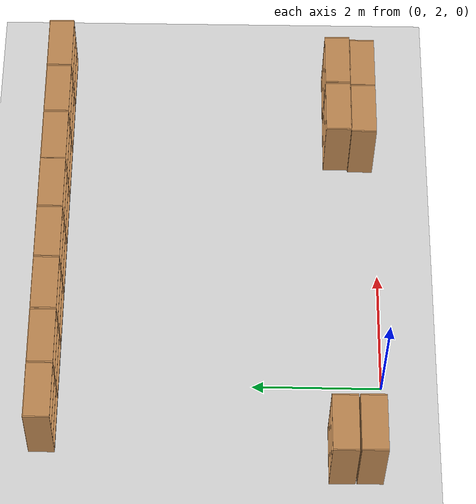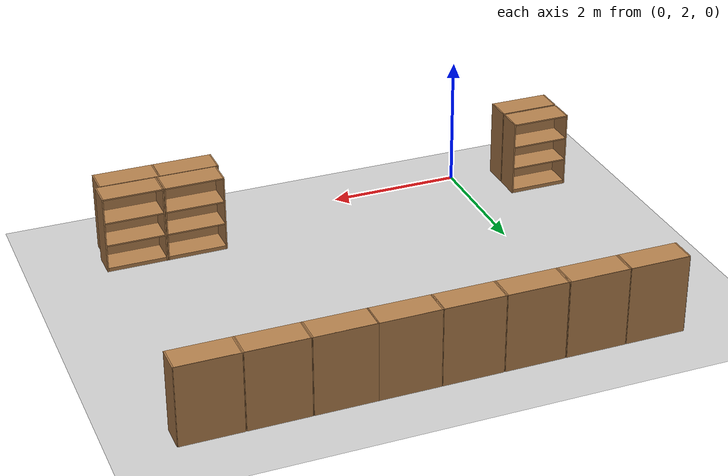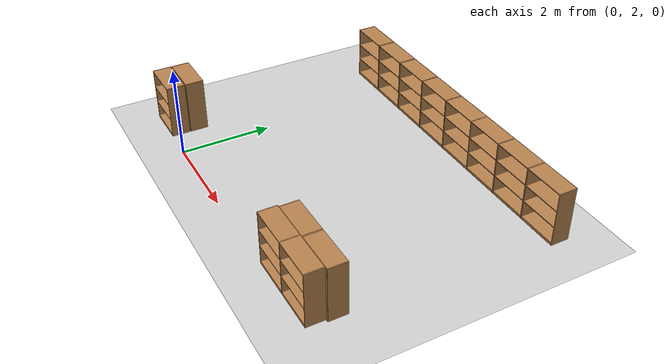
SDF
<sdf version="1.7">
 <world name="default">
  <model name="ground_plane">
   <static>1</static>
   <link name="link">
    <collision name="collision">
     <geometry><plane><normal>0 0 1</normal><size>100 100</size></plane></geometry>
     <surface><friction><ode><mu>100</mu><mu2>50</mu2></ode></friction></surface>
    </collision>
    <visual name="visual">
     <cast_shadows>0</cast_shadows>
     <geometry><plane><normal>0 0 1</normal><size>100 100</size></plane></geometry>
     <material>
      <script><uri>file://media/materials/scripts/gazebo.material</uri><name>Gazebo/Grey</name></script>
     </material>
    </visual>
   </link>
  </model>
  <model name="bookshelf_clone_0_clone_0_clone_clone_clone_clone_clone_1_clone_clone_clone_clone_clone_clone_clone_clone_clone_clone_0_clone_clone_clone_clone_clone_0">
   <static>1</static>
   <link name="link">
    <inertial><mass>1</mass></inertial>
    <collision name="back">
     <pose>0 0.005 0.6 0 -0 0</pose>
     <geometry><box><size>0.9 0.01 1.2</size></box></geometry>
    </collision>
    <visual name="visual1">
     <pose>0 0.005 0.6 0 -0 0</pose>
     <geometry><box><size>0.9 0.01 1.2</size></box></geometry>
     <material>
      <script><uri>file://media/materials/scripts/gazebo.material</uri><name>Gazebo/Wood</name></script>
     </material>
    </visual>
    <collision name="left_side">
     <pose>0.45 -0.195 0.6 0 -0 0</pose>
     <geometry><box><size>0.02 0.4 1.2</size></box></geometry>
    </collision>
    <visual name="visual2">
     <pose>0.45 -0.195 0.6 0 -0 0</pose>
     <geometry><box><size>0.02 0.4 1.2</size></box></geometry>
     <material>
      <script><uri>file://media/materials/scripts/gazebo.material</uri><name>Gazebo/Wood</name></script>
     </material>
    </visual>
    <collision name="right_side">
     <pose>-0.45 -0.195 0.6 0 -0 0</pose>
     <geometry><box><size>0.02 0.4 1.2</size></box></geometry>
    </collision>
    <visual name="visual3">
     <pose>-0.45 -0.195 0.6 0 -0 0</pose>
     <geometry><box><size>0.02 0.4 1.2</size></box></geometry>
     <material>
      <script><uri>file://media/materials/scripts/gazebo.material</uri><name>Gazebo/Wood</name></script>
     </material>
    </visual>
    <collision name="bottom">
     <pose>0 -0.195 0.03 0 -0 0</pose>
     <geometry><box><size>0.88 0.4 0.06</size></box></geometry>
    </collision>
    <visual name="visual4">
     <pose>0 -0.195 0.03 0 -0 0</pose>
     <geometry><box><size>0.88 0.4 0.06</size></box></geometry>
     <material>
      <script><uri>file://media/materials/scripts/gazebo.material</uri><name>Gazebo/Wood</name></script>
     </material>
    </visual>
    <collision name="top">
     <pose>0 -0.195 1.19 0 -0 0</pose>
     <geometry><box><size>0.88 0.4 0.02</size></box></geometry>
    </collision>
    <visual name="visual5">
     <pose>0 -0.195 1.19 0 -0 0</pose>
     <geometry><box><size>0.88 0.4 0.02</size></box></geometry>
     <material>
      <script><uri>file://media/materials/scripts/gazebo.material</uri><name>Gazebo/Wood</name></script>
     </material>
    </visual>
    <collision name="low_shelf">
     <pose>0 -0.195 0.43 0 -0 0</pose>
     <geometry><box><size>0.88 0.4 0.02</size></box></geometry>
    </collision>
    <visual name="visual6">
     <pose>0 -0.195 0.43 0 -0 0</pose>
     <geometry><box><size>0.88 0.4 0.02</size></box></geometry>
     <material>
      <script><uri>file://media/materials/scripts/gazebo.material</uri><name>Gazebo/Wood</name></script>
     </material>
    </visual>
    <collision name="high_shelf">
     <pose>0 -0.195 0.8 0 -0 0</pose>
     <geometry><box><size>0.88 0.4 0.02</size></box></geometry>
    </collision>
    <visual name="visual7">
     <pose>0 -0.195 0.8 0 -0 0</pose>
     <geometry><box><size>0.88 0.4 0.02</size></box></geometry>
     <material>
      <script><uri>file://media/materials/scripts/gazebo.material</uri><name>Gazebo/Wood</name></script>
     </material>
    </visual>
   </link>
   <pose>-1.14635 2.40318 0.004614 0 -0 0.000147</pose>
  </model>
  <model name="bookshelf_clone_0_clone_0_clone_clone_clone_clone_clone_1_clone_clone_clone_clone_clone_clone_clone_clone_clone_clone_0_clone_clone_clone_clone_clone_0_clone_1">
   <static>1</static>
   <link name="link">
    <inertial><mass>1</mass></inertial>
    <collision name="back">
     <pose>0 0.005 0.6 0 -0 0</pose>
     <geometry><box><size>0.9 0.01 1.2</size></box></geometry>
    </collision>
    <visual name="visual1">
     <pose>0 0.005 0.6 0 -0 0</pose>
     <geometry><box><size>0.9 0.01 1.2</size></box></geometry>
     <material>
      <script><uri>file://media/materials/scripts/gazebo.material</uri><name>Gazebo/Wood</name></script>
     </material>
    </visual>
    <collision name="left_side">
     <pose>0.45 -0.195 0.6 0 -0 0</pose>
     <geometry><box><size>0.02 0.4 1.2</size></box></geometry>
    </collision>
    <visual name="visual2">
     <pose>0.45 -0.195 0.6 0 -0 0</pose>
     <geometry><box><size>0.02 0.4 1.2</size></box></geometry>
     <material>
      <script><uri>file://media/materials/scripts/gazebo.material</uri><name>Gazebo/Wood</name></script>
     </material>
    </visual>
    <collision name="right_side">
     <pose>-0.45 -0.195 0.6 0 -0 0</pose>
     <geometry><box><size>0.02 0.4 1.2</size></box></geometry>
    </collision>
    <visual name="visual3">
     <pose>-0.45 -0.195 0.6 0 -0 0</pose>
     <geometry><box><size>0.02 0.4 1.2</size></box></geometry>
     <material>
      <script><uri>file://media/materials/scripts/gazebo.material</uri><name>Gazebo/Wood</name></script>
     </material>
    </visual>
    <collision name="bottom">
     <pose>0 -0.195 0.03 0 -0 0</pose>
     <geometry><box><size>0.88 0.4 0.06</size></box></geometry>
    </collision>
    <visual name="visual4">
     <pose>0 -0.195 0.03 0 -0 0</pose>
     <geometry><box><size>0.88 0.4 0.06</size></box></geometry>
     <material>
      <script><uri>file://media/materials/scripts/gazebo.material</uri><name>Gazebo/Wood</name></script>
     </material>
    </visual>
    <collision name="top">
     <pose>0 -0.195 1.19 0 -0 0</pose>
     <geometry><box><size>0.88 0.4 0.02</size></box></geometry>
    </collision>
    <visual name="visual5">
     <pose>0 -0.195 1.19 0 -0 0</pose>
     <geometry><box><size>0.88 0.4 0.02</size></box></geometry>
     <material>
      <script><uri>file://media/materials/scripts/gazebo.material</uri><name>Gazebo/Wood</name></script>
     </material>
    </visual>
    <collision name="low_shelf">
     <pose>0 -0.195 0.43 0 -0 0</pose>
     <geometry><box><size>0.88 0.4 0.02</size></box></geometry>
    </collision>
    <visual name="visual6">
     <pose>0 -0.195 0.43 0 -0 0</pose>
     <geometry><box><size>0.88 0.4 0.02</size></box></geometry>
     <material>
      <script><uri>file://media/materials/scripts/gazebo.material</uri><name>Gazebo/Wood</name></script>
     </material>
    </visual>
    <collision name="high_shelf">
     <pose>0 -0.195 0.8 0 -0 0</pose>
     <geometry><box><size>0.88 0.4 0.02</size></box></geometry>
    </collision>
    <visual name="visual7">
     <pose>0 -0.195 0.8 0 -0 0</pose>
     <geometry><box><size>0.88 0.4 0.02</size></box></geometry>
     <material>
      <script><uri>file://media/materials/scripts/gazebo.material</uri><name>Gazebo/Wood</name></script>
     </material>
    </visual>
   </link>
   <pose>4.46587 2.42546 0.004614 0 -0 0.000147</pose>
  </model>
  <model name="bookshelf_clone_0_clone_0_clone_clone_clone_clone_clone_1_clone_clone_clone_clone_clone_clone_clone_clone_clone_clone_0_clone_clone_clone_clone_clone_0_clone_1_clone">
   <static>1</static>
   <link name="link">
    <inertial><mass>1</mass></inertial>
    <collision name="back">
     <pose>0 0.005 0.6 0 -0 0</pose>
     <geometry><box><size>0.9 0.01 1.2</size></box></geometry>
    </collision>
    <visual name="visual1">
     <pose>0 0.005 0.6 0 -0 0</pose>
     <geometry><box><size>0.9 0.01 1.2</size></box></geometry>
     <material>
      <script><uri>file://media/materials/scripts/gazebo.material</uri><name>Gazebo/Wood</name></script>
     </material>
    </visual>
    <collision name="left_side">
     <pose>0.45 -0.195 0.6 0 -0 0</pose>
     <geometry><box><size>0.02 0.4 1.2</size></box></geometry>
    </collision>
    <visual name="visual2">
     <pose>0.45 -0.195 0.6 0 -0 0</pose>
     <geometry><box><size>0.02 0.4 1.2</size></box></geometry>
     <material>
      <script><uri>file://media/materials/scripts/gazebo.material</uri><name>Gazebo/Wood</name></script>
     </material>
    </visual>
    <collision name="right_side">
     <pose>-0.45 -0.195 0.6 0 -0 0</pose>
     <geometry><box><size>0.02 0.4 1.2</size></box></geometry>
    </collision>
    <visual name="visual3">
     <pose>-0.45 -0.195 0.6 0 -0 0</pose>
     <geometry><box><size>0.02 0.4 1.2</size></box></geometry>
     <material>
      <script><uri>file://media/materials/scripts/gazebo.material</uri><name>Gazebo/Wood</name></script>
     </material>
    </visual>
    <collision name="bottom">
     <pose>0 -0.195 0.03 0 -0 0</pose>
     <geometry><box><size>0.88 0.4 0.06</size></box></geometry>
    </collision>
    <visual name="visual4">
     <pose>0 -0.195 0.03 0 -0 0</pose>
     <geometry><box><size>0.88 0.4 0.06</size></box></geometry>
     <material>
      <script><uri>file://media/materials/scripts/gazebo.material</uri><name>Gazebo/Wood</name></script>
     </material>
    </visual>
    <collision name="top">
     <pose>0 -0.195 1.19 0 -0 0</pose>
     <geometry><box><size>0.88 0.4 0.02</size></box></geometry>
    </collision>
    <visual name="visual5">
     <pose>0 -0.195 1.19 0 -0 0</pose>
     <geometry><box><size>0.88 0.4 0.02</size></box></geometry>
     <material>
      <script><uri>file://media/materials/scripts/gazebo.material</uri><name>Gazebo/Wood</name></script>
     </material>
    </visual>
    <collision name="low_shelf">
     <pose>0 -0.195 0.43 0 -0 0</pose>
     <geometry><box><size>0.88 0.4 0.02</size></box></geometry>
    </collision>
    <visual name="visual6">
     <pose>0 -0.195 0.43 0 -0 0</pose>
     <geometry><box><size>0.88 0.4 0.02</size></box></geometry>
     <material>
      <script><uri>file://media/materials/scripts/gazebo.material</uri><name>Gazebo/Wood</name></script>
     </material>
    </visual>
    <collision name="high_shelf">
     <pose>0 -0.195 0.8 0 -0 0</pose>
     <geometry><box><size>0.88 0.4 0.02</size></box></geometry>
    </collision>
    <visual name="visual7">
     <pose>0 -0.195 0.8 0 -0 0</pose>
     <geometry><box><size>0.88 0.4 0.02</size></box></geometry>
     <material>
      <script><uri>file://media/materials/scripts/gazebo.material</uri><name>Gazebo/Wood</name></script>
     </material>
    </visual>
   </link>
   <pose>5.37211 2.42546 0.004614 0 -0 0.000147</pose>
  </model>
  <model name="bookshelf_clone_0_clone_0_clone_clone_clone_0_clone_clone_1_clone_0_clone">
   <static>1</static>
   <link name="link">
    <inertial><mass>1</mass></inertial>
    <collision name="back">
     <pose>0 0.005 0.6 0 -0 0</pose>
     <geometry><box><size>0.9 0.01 1.2</size></box></geometry>
    </collision>
    <visual name="visual1">
     <pose>0 0.005 0.6 0 -0 0</pose>
     <geometry><box><size>0.9 0.01 1.2</size></box></geometry>
     <material>
      <script><uri>file://media/materials/scripts/gazebo.material</uri><name>Gazebo/Wood</name></script>
     </material>
    </visual>
    <collision name="left_side">
     <pose>0.45 -0.195 0.6 0 -0 0</pose>
     <geometry><box><size>0.02 0.4 1.2</size></box></geometry>
    </collision>
    <visual name="visual2">
     <pose>0.45 -0.195 0.6 0 -0 0</pose>
     <geometry><box><size>0.02 0.4 1.2</size></box></geometry>
     <material>
      <script><uri>file://media/materials/scripts/gazebo.material</uri><name>Gazebo/Wood</name></script>
     </material>
    </visual>
    <collision name="right_side">
     <pose>-0.45 -0.195 0.6 0 -0 0</pose>
     <geometry><box><size>0.02 0.4 1.2</size></box></geometry>
    </collision>
    <visual name="visual3">
     <pose>-0.45 -0.195 0.6 0 -0 0</pose>
     <geometry><box><size>0.02 0.4 1.2</size></box></geometry>
     <material>
      <script><uri>file://media/materials/scripts/gazebo.material</uri><name>Gazebo/Wood</name></script>
     </material>
    </visual>
    <collision name="bottom">
     <pose>0 -0.195 0.03 0 -0 0</pose>
     <geometry><box><size>0.88 0.4 0.06</size></box></geometry>
    </collision>
    <visual name="visual4">
     <pose>0 -0.195 0.03 0 -0 0</pose>
     <geometry><box><size>0.88 0.4 0.06</size></box></geometry>
     <material>
      <script><uri>file://media/materials/scripts/gazebo.material</uri><name>Gazebo/Wood</name></script>
     </material>
    </visual>
    <collision name="top">
     <pose>0 -0.195 1.19 0 -0 0</pose>
     <geometry><box><size>0.88 0.4 0.02</size></box></geometry>
    </collision>
    <visual name="visual5">
     <pose>0 -0.195 1.19 0 -0 0</pose>
     <geometry><box><size>0.88 0.4 0.02</size></box></geometry>
     <material>
      <script><uri>file://media/materials/scripts/gazebo.material</uri><name>Gazebo/Wood</name></script>
     </material>
    </visual>
    <collision name="low_shelf">
     <pose>0 -0.195 0.43 0 -0 0</pose>
     <geometry><box><size>0.88 0.4 0.02</size></box></geometry>
    </collision>
    <visual name="visual6">
     <pose>0 -0.195 0.43 0 -0 0</pose>
     <geometry><box><size>0.88 0.4 0.02</size></box></geometry>
     <material>
      <script><uri>file://media/materials/scripts/gazebo.material</uri><name>Gazebo/Wood</name></script>
     </material>
    </visual>
    <collision name="high_shelf">
     <pose>0 -0.195 0.8 0 -0 0</pose>
     <geometry><box><size>0.88 0.4 0.02</size></box></geometry>
    </collision>
    <visual name="visual7">
     <pose>0 -0.195 0.8 0 -0 0</pose>
     <geometry><box><size>0.88 0.4 0.02</size></box></geometry>
     <material>
      <script><uri>file://media/materials/scripts/gazebo.material</uri><name>Gazebo/Wood</name></script>
     </material>
    </visual>
   </link>
   <pose>5.42881 2.44108 0 0 0 -3.14107</pose>
  </model>
  <model name="bookshelf_clone_0_clone_0_clone_clone_clone_0_clone_clone_1_clone_0_clone_0">
   <static>1</static>
   <link name="link">
    <inertial><mass>1</mass></inertial>
    <collision name="back">
     <pose>0 0.005 0.6 0 -0 0</pose>
     <geometry><box><size>0.9 0.01 1.2</size></box></geometry>
    </collision>
    <visual name="visual1">
     <pose>0 0.005 0.6 0 -0 0</pose>
     <geometry><box><size>0.9 0.01 1.2</size></box></geometry>
     <material>
      <script><uri>file://media/materials/scripts/gazebo.material</uri><name>Gazebo/Wood</name></script>
     </material>
    </visual>
    <collision name="left_side">
     <pose>0.45 -0.195 0.6 0 -0 0</pose>
     <geometry><box><size>0.02 0.4 1.2</size></box></geometry>
    </collision>
    <visual name="visual2">
     <pose>0.45 -0.195 0.6 0 -0 0</pose>
     <geometry><box><size>0.02 0.4 1.2</size></box></geometry>
     <material>
      <script><uri>file://media/materials/scripts/gazebo.material</uri><name>Gazebo/Wood</name></script>
     </material>
    </visual>
    <collision name="right_side">
     <pose>-0.45 -0.195 0.6 0 -0 0</pose>
     <geometry><box><size>0.02 0.4 1.2</size></box></geometry>
    </collision>
    <visual name="visual3">
     <pose>-0.45 -0.195 0.6 0 -0 0</pose>
     <geometry><box><size>0.02 0.4 1.2</size></box></geometry>
     <material>
      <script><uri>file://media/materials/scripts/gazebo.material</uri><name>Gazebo/Wood</name></script>
     </material>
    </visual>
    <collision name="bottom">
     <pose>0 -0.195 0.03 0 -0 0</pose>
     <geometry><box><size>0.88 0.4 0.06</size></box></geometry>
    </collision>
    <visual name="visual4">
     <pose>0 -0.195 0.03 0 -0 0</pose>
     <geometry><box><size>0.88 0.4 0.06</size></box></geometry>
     <material>
      <script><uri>file://media/materials/scripts/gazebo.material</uri><name>Gazebo/Wood</name></script>
     </material>
    </visual>
    <collision name="top">
     <pose>0 -0.195 1.19 0 -0 0</pose>
     <geometry><box><size>0.88 0.4 0.02</size></box></geometry>
    </collision>
    <visual name="visual5">
     <pose>0 -0.195 1.19 0 -0 0</pose>
     <geometry><box><size>0.88 0.4 0.02</size></box></geometry>
     <material>
      <script><uri>file://media/materials/scripts/gazebo.material</uri><name>Gazebo/Wood</name></script>
     </material>
    </visual>
    <collision name="low_shelf">
     <pose>0 -0.195 0.43 0 -0 0</pose>
     <geometry><box><size>0.88 0.4 0.02</size></box></geometry>
    </collision>
    <visual name="visual6">
     <pose>0 -0.195 0.43 0 -0 0</pose>
     <geometry><box><size>0.88 0.4 0.02</size></box></geometry>
     <material>
      <script><uri>file://media/materials/scripts/gazebo.material</uri><name>Gazebo/Wood</name></script>
     </material>
    </visual>
    <collision name="high_shelf">
     <pose>0 -0.195 0.8 0 -0 0</pose>
     <geometry><box><size>0.88 0.4 0.02</size></box></geometry>
    </collision>
    <visual name="visual7">
     <pose>0 -0.195 0.8 0 -0 0</pose>
     <geometry><box><size>0.88 0.4 0.02</size></box></geometry>
     <material>
      <script><uri>file://media/materials/scripts/gazebo.material</uri><name>Gazebo/Wood</name></script>
     </material>
    </visual>
   </link>
   <pose>4.50428 2.44108 0 0 0 -3.14107</pose>
  </model>
  <model name="bookshelf_clone_0_clone_0_clone_clone_clone_0_clone_clone_1_clone_0_clone_0_clone">
   <static>1</static>
   <link name="link">
    <inertial><mass>1</mass></inertial>
    <collision name="back">
     <pose>0 0.005 0.6 0 -0 0</pose>
     <geometry><box><size>0.9 0.01 1.2</size></box></geometry>
    </collision>
    <visual name="visual1">
     <pose>0 0.005 0.6 0 -0 0</pose>
     <geometry><box><size>0.9 0.01 1.2</size></box></geometry>
     <material>
      <script><uri>file://media/materials/scripts/gazebo.material</uri><name>Gazebo/Wood</name></script>
     </material>
    </visual>
    <collision name="left_side">
     <pose>0.45 -0.195 0.6 0 -0 0</pose>
     <geometry><box><size>0.02 0.4 1.2</size></box></geometry>
    </collision>
    <visual name="visual2">
     <pose>0.45 -0.195 0.6 0 -0 0</pose>
     <geometry><box><size>0.02 0.4 1.2</size></box></geometry>
     <material>
      <script><uri>file://media/materials/scripts/gazebo.material</uri><name>Gazebo/Wood</name></script>
     </material>
    </visual>
    <collision name="right_side">
     <pose>-0.45 -0.195 0.6 0 -0 0</pose>
     <geometry><box><size>0.02 0.4 1.2</size></box></geometry>
    </collision>
    <visual name="visual3">
     <pose>-0.45 -0.195 0.6 0 -0 0</pose>
     <geometry><box><size>0.02 0.4 1.2</size></box></geometry>
     <material>
      <script><uri>file://media/materials/scripts/gazebo.material</uri><name>Gazebo/Wood</name></script>
     </material>
    </visual>
    <collision name="bottom">
     <pose>0 -0.195 0.03 0 -0 0</pose>
     <geometry><box><size>0.88 0.4 0.06</size></box></geometry>
    </collision>
    <visual name="visual4">
     <pose>0 -0.195 0.03 0 -0 0</pose>
     <geometry><box><size>0.88 0.4 0.06</size></box></geometry>
     <material>
      <script><uri>file://media/materials/scripts/gazebo.material</uri><name>Gazebo/Wood</name></script>
     </material>
    </visual>
    <collision name="top">
     <pose>0 -0.195 1.19 0 -0 0</pose>
     <geometry><box><size>0.88 0.4 0.02</size></box></geometry>
    </collision>
    <visual name="visual5">
     <pose>0 -0.195 1.19 0 -0 0</pose>
     <geometry><box><size>0.88 0.4 0.02</size></box></geometry>
     <material>
      <script><uri>file://media/materials/scripts/gazebo.material</uri><name>Gazebo/Wood</name></script>
     </material>
    </visual>
    <collision name="low_shelf">
     <pose>0 -0.195 0.43 0 -0 0</pose>
     <geometry><box><size>0.88 0.4 0.02</size></box></geometry>
    </collision>
    <visual name="visual6">
     <pose>0 -0.195 0.43 0 -0 0</pose>
     <geometry><box><size>0.88 0.4 0.02</size></box></geometry>
     <material>
      <script><uri>file://media/materials/scripts/gazebo.material</uri><name>Gazebo/Wood</name></script>
     </material>
    </visual>
    <collision name="high_shelf">
     <pose>0 -0.195 0.8 0 -0 0</pose>
     <geometry><box><size>0.88 0.4 0.02</size></box></geometry>
    </collision>
    <visual name="visual7">
     <pose>0 -0.195 0.8 0 -0 0</pose>
     <geometry><box><size>0.88 0.4 0.02</size></box></geometry>
     <material>
      <script><uri>file://media/materials/scripts/gazebo.material</uri><name>Gazebo/Wood</name></script>
     </material>
    </visual>
   </link>
   <pose>-1.14834 2.43762 0 0 0 -3.14107</pose>
  </model>
  <model name="bookshelf_clone_0_clone_0_clone_clone_clone_clone_clone_1_clone_clone_clone_clone_clone_clone_clone_clone_clone_clone_0_clone_clone_clone_clone_clone_0_clone_1_clone_0_clone_1_clone_0">
   <static>1</static>
   <link name="link">
    <inertial><mass>1</mass></inertial>
    <collision name="back">
     <pose>0 0.005 0.6 0 -0 0</pose>
     <geometry><box><size>0.9 0.01 1.2</size></box></geometry>
    </collision>
    <visual name="visual1">
     <pose>0 0.005 0.6 0 -0 0</pose>
     <geometry><box><size>0.9 0.01 1.2</size></box></geometry>
     <material>
      <script><uri>file://media/materials/scripts/gazebo.material</uri><name>Gazebo/Wood</name></script>
     </material>
    </visual>
    <collision name="left_side">
     <pose>0.45 -0.195 0.6 0 -0 0</pose>
     <geometry><box><size>0.02 0.4 1.2</size></box></geometry>
    </collision>
    <visual name="visual2">
     <pose>0.45 -0.195 0.6 0 -0 0</pose>
     <geometry><box><size>0.02 0.4 1.2</size></box></geometry>
     <material>
      <script><uri>file://media/materials/scripts/gazebo.material</uri><name>Gazebo/Wood</name></script>
     </material>
    </visual>
    <collision name="right_side">
     <pose>-0.45 -0.195 0.6 0 -0 0</pose>
     <geometry><box><size>0.02 0.4 1.2</size></box></geometry>
    </collision>
    <visual name="visual3">
     <pose>-0.45 -0.195 0.6 0 -0 0</pose>
     <geometry><box><size>0.02 0.4 1.2</size></box></geometry>
     <material>
      <script><uri>file://media/materials/scripts/gazebo.material</uri><name>Gazebo/Wood</name></script>
     </material>
    </visual>
    <collision name="bottom">
     <pose>0 -0.195 0.03 0 -0 0</pose>
     <geometry><box><size>0.88 0.4 0.06</size></box></geometry>
    </collision>
    <visual name="visual4">
     <pose>0 -0.195 0.03 0 -0 0</pose>
     <geometry><box><size>0.88 0.4 0.06</size></box></geometry>
     <material>
      <script><uri>file://media/materials/scripts/gazebo.material</uri><name>Gazebo/Wood</name></script>
     </material>
    </visual>
    <collision name="top">
     <pose>0 -0.195 1.19 0 -0 0</pose>
     <geometry><box><size>0.88 0.4 0.02</size></box></geometry>
    </collision>
    <visual name="visual5">
     <pose>0 -0.195 1.19 0 -0 0</pose>
     <geometry><box><size>0.88 0.4 0.02</size></box></geometry>
     <material>
      <script><uri>file://media/materials/scripts/gazebo.material</uri><name>Gazebo/Wood</name></script>
     </material>
    </visual>
    <collision name="low_shelf">
     <pose>0 -0.195 0.43 0 -0 0</pose>
     <geometry><box><size>0.88 0.4 0.02</size></box></geometry>
    </collision>
    <visual name="visual6">
     <pose>0 -0.195 0.43 0 -0 0</pose>
     <geometry><box><size>0.88 0.4 0.02</size></box></geometry>
     <material>
      <script><uri>file://media/materials/scripts/gazebo.material</uri><name>Gazebo/Wood</name></script>
     </material>
    </visual>
    <collision name="high_shelf">
     <pose>0 -0.195 0.8 0 -0 0</pose>
     <geometry><box><size>0.88 0.4 0.02</size></box></geometry>
    </collision>
    <visual name="visual7">
     <pose>0 -0.195 0.8 0 -0 0</pose>
     <geometry><box><size>0.88 0.4 0.02</size></box></geometry>
     <material>
      <script><uri>file://media/materials/scripts/gazebo.material</uri><name>Gazebo/Wood</name></script>
     </material>
    </visual>
   </link>
   <pose>5.70807 7.38892 0.004614 0 -0 0.000147</pose>
  </model>
  <model name="bookshelf_clone_0_clone_0_clone_clone_clone_clone_clone_1_clone_clone_clone_clone_clone_clone_clone_clone_clone_clone_0_clone_clone_clone_clone_clone_0_clone_1_clone_0_clone_1_clone_0_clone">
   <static>1</static>
   <link name="link">
    <inertial><mass>1</mass></inertial>
    <collision name="back">
     <pose>0 0.005 0.6 0 -0 0</pose>
     <geometry><box><size>0.9 0.01 1.2</size></box></geometry>
    </collision>
    <visual name="visual1">
     <pose>0 0.005 0.6 0 -0 0</pose>
     <geometry><box><size>0.9 0.01 1.2</size></box></geometry>
     <material>
      <script><uri>file://media/materials/scripts/gazebo.material</uri><name>Gazebo/Wood</name></script>
     </material>
    </visual>
    <collision name="left_side">
     <pose>0.45 -0.195 0.6 0 -0 0</pose>
     <geometry><box><size>0.02 0.4 1.2</size></box></geometry>
    </collision>
    <visual name="visual2">
     <pose>0.45 -0.195 0.6 0 -0 0</pose>
     <geometry><box><size>0.02 0.4 1.2</size></box></geometry>
     <material>
      <script><uri>file://media/materials/scripts/gazebo.material</uri><name>Gazebo/Wood</name></script>
     </material>
    </visual>
    <collision name="right_side">
     <pose>-0.45 -0.195 0.6 0 -0 0</pose>
     <geometry><box><size>0.02 0.4 1.2</size></box></geometry>
    </collision>
    <visual name="visual3">
     <pose>-0.45 -0.195 0.6 0 -0 0</pose>
     <geometry><box><size>0.02 0.4 1.2</size></box></geometry>
     <material>
      <script><uri>file://media/materials/scripts/gazebo.material</uri><name>Gazebo/Wood</name></script>
     </material>
    </visual>
    <collision name="bottom">
     <pose>0 -0.195 0.03 0 -0 0</pose>
     <geometry><box><size>0.88 0.4 0.06</size></box></geometry>
    </collision>
    <visual name="visual4">
     <pose>0 -0.195 0.03 0 -0 0</pose>
     <geometry><box><size>0.88 0.4 0.06</size></box></geometry>
     <material>
      <script><uri>file://media/materials/scripts/gazebo.material</uri><name>Gazebo/Wood</name></script>
     </material>
    </visual>
    <collision name="top">
     <pose>0 -0.195 1.19 0 -0 0</pose>
     <geometry><box><size>0.88 0.4 0.02</size></box></geometry>
    </collision>
    <visual name="visual5">
     <pose>0 -0.195 1.19 0 -0 0</pose>
     <geometry><box><size>0.88 0.4 0.02</size></box></geometry>
     <material>
      <script><uri>file://media/materials/scripts/gazebo.material</uri><name>Gazebo/Wood</name></script>
     </material>
    </visual>
    <collision name="low_shelf">
     <pose>0 -0.195 0.43 0 -0 0</pose>
     <geometry><box><size>0.88 0.4 0.02</size></box></geometry>
    </collision>
    <visual name="visual6">
     <pose>0 -0.195 0.43 0 -0 0</pose>
     <geometry><box><size>0.88 0.4 0.02</size></box></geometry>
     <material>
      <script><uri>file://media/materials/scripts/gazebo.material</uri><name>Gazebo/Wood</name></script>
     </material>
    </visual>
    <collision name="high_shelf">
     <pose>0 -0.195 0.8 0 -0 0</pose>
     <geometry><box><size>0.88 0.4 0.02</size></box></geometry>
    </collision>
    <visual name="visual7">
     <pose>0 -0.195 0.8 0 -0 0</pose>
     <geometry><box><size>0.88 0.4 0.02</size></box></geometry>
     <material>
      <script><uri>file://media/materials/scripts/gazebo.material</uri><name>Gazebo/Wood</name></script>
     </material>
    </visual>
   </link>
   <pose>4.79286 7.38892 0.004614 0 -0 0.000147</pose>
  </model>
  <model name="bookshelf_clone_0_clone_0_clone_clone_clone_clone_clone_1_clone_clone_clone_clone_clone_clone_clone_clone_clone_clone_0_clone_clone_clone_clone_clone_0_clone_1_clone_0_clone_1_clone_0_clone_clone">
   <static>1</static>
   <link name="link">
    <inertial><mass>1</mass></inertial>
    <collision name="back">
     <pose>0 0.005 0.6 0 -0 0</pose>
     <geometry><box><size>0.9 0.01 1.2</size></box></geometry>
    </collision>
    <visual name="visual1">
     <pose>0 0.005 0.6 0 -0 0</pose>
     <geometry><box><size>0.9 0.01 1.2</size></box></geometry>
     <material>
      <script><uri>file://media/materials/scripts/gazebo.material</uri><name>Gazebo/Wood</name></script>
     </material>
    </visual>
    <collision name="left_side">
     <pose>0.45 -0.195 0.6 0 -0 0</pose>
     <geometry><box><size>0.02 0.4 1.2</size></box></geometry>
    </collision>
    <visual name="visual2">
     <pose>0.45 -0.195 0.6 0 -0 0</pose>
     <geometry><box><size>0.02 0.4 1.2</size></box></geometry>
     <material>
      <script><uri>file://media/materials/scripts/gazebo.material</uri><name>Gazebo/Wood</name></script>
     </material>
    </visual>
    <collision name="right_side">
     <pose>-0.45 -0.195 0.6 0 -0 0</pose>
     <geometry><box><size>0.02 0.4 1.2</size></box></geometry>
    </collision>
    <visual name="visual3">
     <pose>-0.45 -0.195 0.6 0 -0 0</pose>
     <geometry><box><size>0.02 0.4 1.2</size></box></geometry>
     <material>
      <script><uri>file://media/materials/scripts/gazebo.material</uri><name>Gazebo/Wood</name></script>
     </material>
    </visual>
    <collision name="bottom">
     <pose>0 -0.195 0.03 0 -0 0</pose>
     <geometry><box><size>0.88 0.4 0.06</size></box></geometry>
    </collision>
    <visual name="visual4">
     <pose>0 -0.195 0.03 0 -0 0</pose>
     <geometry><box><size>0.88 0.4 0.06</size></box></geometry>
     <material>
      <script><uri>file://media/materials/scripts/gazebo.material</uri><name>Gazebo/Wood</name></script>
     </material>
    </visual>
    <collision name="top">
     <pose>0 -0.195 1.19 0 -0 0</pose>
     <geometry><box><size>0.88 0.4 0.02</size></box></geometry>
    </collision>
    <visual name="visual5">
     <pose>0 -0.195 1.19 0 -0 0</pose>
     <geometry><box><size>0.88 0.4 0.02</size></box></geometry>
     <material>
      <script><uri>file://media/materials/scripts/gazebo.material</uri><name>Gazebo/Wood</name></script>
     </material>
    </visual>
    <collision name="low_shelf">
     <pose>0 -0.195 0.43 0 -0 0</pose>
     <geometry><box><size>0.88 0.4 0.02</size></box></geometry>
    </collision>
    <visual name="visual6">
     <pose>0 -0.195 0.43 0 -0 0</pose>
     <geometry><box><size>0.88 0.4 0.02</size></box></geometry>
     <material>
      <script><uri>file://media/materials/scripts/gazebo.material</uri><name>Gazebo/Wood</name></script>
     </material>
    </visual>
    <collision name="high_shelf">
     <pose>0 -0.195 0.8 0 -0 0</pose>
     <geometry><box><size>0.88 0.4 0.02</size></box></geometry>
    </collision>
    <visual name="visual7">
     <pose>0 -0.195 0.8 0 -0 0</pose>
     <geometry><box><size>0.88 0.4 0.02</size></box></geometry>
     <material>
      <script><uri>file://media/materials/scripts/gazebo.material</uri><name>Gazebo/Wood</name></script>
     </material>
    </visual>
   </link>
   <pose>3.87737 7.38892 0.004614 0 -0 0.000147</pose>
  </model>
  <model name="bookshelf_clone_0_clone_0_clone_clone_clone_clone_clone_1_clone_clone_clone_clone_clone_clone_clone_clone_clone_clone_0_clone_clone_clone_clone_clone_0_clone_1_clone_0_clone_1_clone_0_clone_clone_clone">
   <static>1</static>
   <link name="link">
    <inertial><mass>1</mass></inertial>
    <collision name="back">
     <pose>0 0.005 0.6 0 -0 0</pose>
     <geometry><box><size>0.9 0.01 1.2</size></box></geometry>
    </collision>
    <visual name="visual1">
     <pose>0 0.005 0.6 0 -0 0</pose>
     <geometry><box><size>0.9 0.01 1.2</size></box></geometry>
     <material>
      <script><uri>file://media/materials/scripts/gazebo.material</uri><name>Gazebo/Wood</name></script>
     </material>
    </visual>
    <collision name="left_side">
     <pose>0.45 -0.195 0.6 0 -0 0</pose>
     <geometry><box><size>0.02 0.4 1.2</size></box></geometry>
    </collision>
    <visual name="visual2">
     <pose>0.45 -0.195 0.6 0 -0 0</pose>
     <geometry><box><size>0.02 0.4 1.2</size></box></geometry>
     <material>
      <script><uri>file://media/materials/scripts/gazebo.material</uri><name>Gazebo/Wood</name></script>
     </material>
    </visual>
    <collision name="right_side">
     <pose>-0.45 -0.195 0.6 0 -0 0</pose>
     <geometry><box><size>0.02 0.4 1.2</size></box></geometry>
    </collision>
    <visual name="visual3">
     <pose>-0.45 -0.195 0.6 0 -0 0</pose>
     <geometry><box><size>0.02 0.4 1.2</size></box></geometry>
     <material>
      <script><uri>file://media/materials/scripts/gazebo.material</uri><name>Gazebo/Wood</name></script>
     </material>
    </visual>
    <collision name="bottom">
     <pose>0 -0.195 0.03 0 -0 0</pose>
     <geometry><box><size>0.88 0.4 0.06</size></box></geometry>
    </collision>
    <visual name="visual4">
     <pose>0 -0.195 0.03 0 -0 0</pose>
     <geometry><box><size>0.88 0.4 0.06</size></box></geometry>
     <material>
      <script><uri>file://media/materials/scripts/gazebo.material</uri><name>Gazebo/Wood</name></script>
     </material>
    </visual>
    <collision name="top">
     <pose>0 -0.195 1.19 0 -0 0</pose>
     <geometry><box><size>0.88 0.4 0.02</size></box></geometry>
    </collision>
    <visual name="visual5">
     <pose>0 -0.195 1.19 0 -0 0</pose>
     <geometry><box><size>0.88 0.4 0.02</size></box></geometry>
     <material>
      <script><uri>file://media/materials/scripts/gazebo.material</uri><name>Gazebo/Wood</name></script>
     </material>
    </visual>
    <collision name="low_shelf">
     <pose>0 -0.195 0.43 0 -0 0</pose>
     <geometry><box><size>0.88 0.4 0.02</size></box></geometry>
    </collision>
    <visual name="visual6">
     <pose>0 -0.195 0.43 0 -0 0</pose>
     <geometry><box><size>0.88 0.4 0.02</size></box></geometry>
     <material>
      <script><uri>file://media/materials/scripts/gazebo.material</uri><name>Gazebo/Wood</name></script>
     </material>
    </visual>
    <collision name="high_shelf">
     <pose>0 -0.195 0.8 0 -0 0</pose>
     <geometry><box><size>0.88 0.4 0.02</size></box></geometry>
    </collision>
    <visual name="visual7">
     <pose>0 -0.195 0.8 0 -0 0</pose>
     <geometry><box><size>0.88 0.4 0.02</size></box></geometry>
     <material>
      <script><uri>file://media/materials/scripts/gazebo.material</uri><name>Gazebo/Wood</name></script>
     </material>
    </visual>
   </link>
   <pose>2.97936 7.38892 0.004614 0 -0 0.000147</pose>
  </model>
  <model name="bookshelf_clone_0_clone_0_clone_clone_clone_clone_clone_1_clone_clone_clone_clone_clone_clone_clone_clone_clone_clone_0_clone_clone_clone_clone_clone_0_clone_1_clone_0_clone_1_clone_0_clone_clone_clone_clone">
   <static>1</static>
   <link name="link">
    <inertial><mass>1</mass></inertial>
    <collision name="back">
     <pose>0 0.005 0.6 0 -0 0</pose>
     <geometry><box><size>0.9 0.01 1.2</size></box></geometry>
    </collision>
    <visual name="visual1">
     <pose>0 0.005 0.6 0 -0 0</pose>
     <geometry><box><size>0.9 0.01 1.2</size></box></geometry>
     <material>
      <script><uri>file://media/materials/scripts/gazebo.material</uri><name>Gazebo/Wood</name></script>
     </material>
    </visual>
    <collision name="left_side">
     <pose>0.45 -0.195 0.6 0 -0 0</pose>
     <geometry><box><size>0.02 0.4 1.2</size></box></geometry>
    </collision>
    <visual name="visual2">
     <pose>0.45 -0.195 0.6 0 -0 0</pose>
     <geometry><box><size>0.02 0.4 1.2</size></box></geometry>
     <material>
      <script><uri>file://media/materials/scripts/gazebo.material</uri><name>Gazebo/Wood</name></script>
     </material>
    </visual>
    <collision name="right_side">
     <pose>-0.45 -0.195 0.6 0 -0 0</pose>
     <geometry><box><size>0.02 0.4 1.2</size></box></geometry>
    </collision>
    <visual name="visual3">
     <pose>-0.45 -0.195 0.6 0 -0 0</pose>
     <geometry><box><size>0.02 0.4 1.2</size></box></geometry>
     <material>
      <script><uri>file://media/materials/scripts/gazebo.material</uri><name>Gazebo/Wood</name></script>
     </material>
    </visual>
    <collision name="bottom">
     <pose>0 -0.195 0.03 0 -0 0</pose>
     <geometry><box><size>0.88 0.4 0.06</size></box></geometry>
    </collision>
    <visual name="visual4">
     <pose>0 -0.195 0.03 0 -0 0</pose>
     <geometry><box><size>0.88 0.4 0.06</size></box></geometry>
     <material>
      <script><uri>file://media/materials/scripts/gazebo.material</uri><name>Gazebo/Wood</name></script>
     </material>
    </visual>
    <collision name="top">
     <pose>0 -0.195 1.19 0 -0 0</pose>
     <geometry><box><size>0.88 0.4 0.02</size></box></geometry>
    </collision>
    <visual name="visual5">
     <pose>0 -0.195 1.19 0 -0 0</pose>
     <geometry><box><size>0.88 0.4 0.02</size></box></geometry>
     <material>
      <script><uri>file://media/materials/scripts/gazebo.material</uri><name>Gazebo/Wood</name></script>
     </material>
    </visual>
    <collision name="low_shelf">
     <pose>0 -0.195 0.43 0 -0 0</pose>
     <geometry><box><size>0.88 0.4 0.02</size></box></geometry>
    </collision>
    <visual name="visual6">
     <pose>0 -0.195 0.43 0 -0 0</pose>
     <geometry><box><size>0.88 0.4 0.02</size></box></geometry>
     <material>
      <script><uri>file://media/materials/scripts/gazebo.material</uri><name>Gazebo/Wood</name></script>
     </material>
    </visual>
    <collision name="high_shelf">
     <pose>0 -0.195 0.8 0 -0 0</pose>
     <geometry><box><size>0.88 0.4 0.02</size></box></geometry>
    </collision>
    <visual name="visual7">
     <pose>0 -0.195 0.8 0 -0 0</pose>
     <geometry><box><size>0.88 0.4 0.02</size></box></geometry>
     <material>
      <script><uri>file://media/materials/scripts/gazebo.material</uri><name>Gazebo/Wood</name></script>
     </material>
    </visual>
   </link>
   <pose>2.06613 7.38892 0.004614 0 -0 0.000147</pose>
  </model>
  <model name="bookshelf_clone_0_clone_0_clone_clone_clone_clone_clone_1_clone_clone_clone_clone_clone_clone_clone_clone_clone_clone_0_clone_clone_clone_clone_clone_0_clone_1_clone_0_clone_1_clone_0_clone_clone_clone_clone_clone">
   <static>1</static>
   <link name="link">
    <inertial><mass>1</mass></inertial>
    <collision name="back">
     <pose>0 0.005 0.6 0 -0 0</pose>
     <geometry><box><size>0.9 0.01 1.2</size></box></geometry>
    </collision>
    <visual name="visual1">
     <pose>0 0.005 0.6 0 -0 0</pose>
     <geometry><box><size>0.9 0.01 1.2</size></box></geometry>
     <material>
      <script><uri>file://media/materials/scripts/gazebo.material</uri><name>Gazebo/Wood</name></script>
     </material>
    </visual>
    <collision name="left_side">
     <pose>0.45 -0.195 0.6 0 -0 0</pose>
     <geometry><box><size>0.02 0.4 1.2</size></box></geometry>
    </collision>
    <visual name="visual2">
     <pose>0.45 -0.195 0.6 0 -0 0</pose>
     <geometry><box><size>0.02 0.4 1.2</size></box></geometry>
     <material>
      <script><uri>file://media/materials/scripts/gazebo.material</uri><name>Gazebo/Wood</name></script>
     </material>
    </visual>
    <collision name="right_side">
     <pose>-0.45 -0.195 0.6 0 -0 0</pose>
     <geometry><box><size>0.02 0.4 1.2</size></box></geometry>
    </collision>
    <visual name="visual3">
     <pose>-0.45 -0.195 0.6 0 -0 0</pose>
     <geometry><box><size>0.02 0.4 1.2</size></box></geometry>
     <material>
      <script><uri>file://media/materials/scripts/gazebo.material</uri><name>Gazebo/Wood</name></script>
     </material>
    </visual>
    <collision name="bottom">
     <pose>0 -0.195 0.03 0 -0 0</pose>
     <geometry><box><size>0.88 0.4 0.06</size></box></geometry>
    </collision>
    <visual name="visual4">
     <pose>0 -0.195 0.03 0 -0 0</pose>
     <geometry><box><size>0.88 0.4 0.06</size></box></geometry>
     <material>
      <script><uri>file://media/materials/scripts/gazebo.material</uri><name>Gazebo/Wood</name></script>
     </material>
    </visual>
    <collision name="top">
     <pose>0 -0.195 1.19 0 -0 0</pose>
     <geometry><box><size>0.88 0.4 0.02</size></box></geometry>
    </collision>
    <visual name="visual5">
     <pose>0 -0.195 1.19 0 -0 0</pose>
     <geometry><box><size>0.88 0.4 0.02</size></box></geometry>
     <material>
      <script><uri>file://media/materials/scripts/gazebo.material</uri><name>Gazebo/Wood</name></script>
     </material>
    </visual>
    <collision name="low_shelf">
     <pose>0 -0.195 0.43 0 -0 0</pose>
     <geometry><box><size>0.88 0.4 0.02</size></box></geometry>
    </collision>
    <visual name="visual6">
     <pose>0 -0.195 0.43 0 -0 0</pose>
     <geometry><box><size>0.88 0.4 0.02</size></box></geometry>
     <material>
      <script><uri>file://media/materials/scripts/gazebo.material</uri><name>Gazebo/Wood</name></script>
     </material>
    </visual>
    <collision name="high_shelf">
     <pose>0 -0.195 0.8 0 -0 0</pose>
     <geometry><box><size>0.88 0.4 0.02</size></box></geometry>
    </collision>
    <visual name="visual7">
     <pose>0 -0.195 0.8 0 -0 0</pose>
     <geometry><box><size>0.88 0.4 0.02</size></box></geometry>
     <material>
      <script><uri>file://media/materials/scripts/gazebo.material</uri><name>Gazebo/Wood</name></script>
     </material>
    </visual>
   </link>
   <pose>1.15074 7.38892 0.004614 0 -0 0.000147</pose>
  </model>
  <model name="bookshelf_clone_0_clone_0_clone_clone_clone_clone_clone_1_clone_clone_clone_clone_clone_clone_clone_clone_clone_clone_0_clone_clone_clone_clone_clone_0_clone_1_clone_0_clone_1_clone_0_clone_clone_clone_clone_clone_clone">
   <static>1</static>
   <link name="link">
    <inertial><mass>1</mass></inertial>
    <collision name="back">
     <pose>0 0.005 0.6 0 -0 0</pose>
     <geometry><box><size>0.9 0.01 1.2</size></box></geometry>
    </collision>
    <visual name="visual1">
     <pose>0 0.005 0.6 0 -0 0</pose>
     <geometry><box><size>0.9 0.01 1.2</size></box></geometry>
     <material>
      <script><uri>file://media/materials/scripts/gazebo.material</uri><name>Gazebo/Wood</name></script>
     </material>
    </visual>
    <collision name="left_side">
     <pose>0.45 -0.195 0.6 0 -0 0</pose>
     <geometry><box><size>0.02 0.4 1.2</size></box></geometry>
    </collision>
    <visual name="visual2">
     <pose>0.45 -0.195 0.6 0 -0 0</pose>
     <geometry><box><size>0.02 0.4 1.2</size></box></geometry>
     <material>
      <script><uri>file://media/materials/scripts/gazebo.material</uri><name>Gazebo/Wood</name></script>
     </material>
    </visual>
    <collision name="right_side">
     <pose>-0.45 -0.195 0.6 0 -0 0</pose>
     <geometry><box><size>0.02 0.4 1.2</size></box></geometry>
    </collision>
    <visual name="visual3">
     <pose>-0.45 -0.195 0.6 0 -0 0</pose>
     <geometry><box><size>0.02 0.4 1.2</size></box></geometry>
     <material>
      <script><uri>file://media/materials/scripts/gazebo.material</uri><name>Gazebo/Wood</name></script>
     </material>
    </visual>
    <collision name="bottom">
     <pose>0 -0.195 0.03 0 -0 0</pose>
     <geometry><box><size>0.88 0.4 0.06</size></box></geometry>
    </collision>
    <visual name="visual4">
     <pose>0 -0.195 0.03 0 -0 0</pose>
     <geometry><box><size>0.88 0.4 0.06</size></box></geometry>
     <material>
      <script><uri>file://media/materials/scripts/gazebo.material</uri><name>Gazebo/Wood</name></script>
     </material>
    </visual>
    <collision name="top">
     <pose>0 -0.195 1.19 0 -0 0</pose>
     <geometry><box><size>0.88 0.4 0.02</size></box></geometry>
    </collision>
    <visual name="visual5">
     <pose>0 -0.195 1.19 0 -0 0</pose>
     <geometry><box><size>0.88 0.4 0.02</size></box></geometry>
     <material>
      <script><uri>file://media/materials/scripts/gazebo.material</uri><name>Gazebo/Wood</name></script>
     </material>
    </visual>
    <collision name="low_shelf">
     <pose>0 -0.195 0.43 0 -0 0</pose>
     <geometry><box><size>0.88 0.4 0.02</size></box></geometry>
    </collision>
    <visual name="visual6">
     <pose>0 -0.195 0.43 0 -0 0</pose>
     <geometry><box><size>0.88 0.4 0.02</size></box></geometry>
     <material>
      <script><uri>file://media/materials/scripts/gazebo.material</uri><name>Gazebo/Wood</name></script>
     </material>
    </visual>
    <collision name="high_shelf">
     <pose>0 -0.195 0.8 0 -0 0</pose>
     <geometry><box><size>0.88 0.4 0.02</size></box></geometry>
    </collision>
    <visual name="visual7">
     <pose>0 -0.195 0.8 0 -0 0</pose>
     <geometry><box><size>0.88 0.4 0.02</size></box></geometry>
     <material>
      <script><uri>file://media/materials/scripts/gazebo.material</uri><name>Gazebo/Wood</name></script>
     </material>
    </visual>
   </link>
   <pose>0.229672 7.38892 0.004614 0 -0 0.000147</pose>
  </model>
  <model name="bookshelf_clone_0_clone_0_clone_clone_clone_clone_clone_1_clone_clone_clone_clone_clone_clone_clone_clone_clone_clone_0_clone_clone_clone_clone_clone_0_clone_1_clone_0_clone_1_clone_0_clone_clone_clone_clone_clone_clone_0">
   <static>1</static>
   <link name="link">
    <inertial><mass>1</mass></inertial>
    <collision name="back">
     <pose>0 0.005 0.6 0 -0 0</pose>
     <geometry><box><size>0.9 0.01 1.2</size></box></geometry>
    </collision>
    <visual name="visual1">
     <pose>0 0.005 0.6 0 -0 0</pose>
     <geometry><box><size>0.9 0.01 1.2</size></box></geometry>
     <material>
      <script><uri>file://media/materials/scripts/gazebo.material</uri><name>Gazebo/Wood</name></script>
     </material>
    </visual>
    <collision name="left_side">
     <pose>0.45 -0.195 0.6 0 -0 0</pose>
     <geometry><box><size>0.02 0.4 1.2</size></box></geometry>
    </collision>
    <visual name="visual2">
     <pose>0.45 -0.195 0.6 0 -0 0</pose>
     <geometry><box><size>0.02 0.4 1.2</size></box></geometry>
     <material>
      <script><uri>file://media/materials/scripts/gazebo.material</uri><name>Gazebo/Wood</name></script>
     </material>
    </visual>
    <collision name="right_side">
     <pose>-0.45 -0.195 0.6 0 -0 0</pose>
     <geometry><box><size>0.02 0.4 1.2</size></box></geometry>
    </collision>
    <visual name="visual3">
     <pose>-0.45 -0.195 0.6 0 -0 0</pose>
     <geometry><box><size>0.02 0.4 1.2</size></box></geometry>
     <material>
      <script><uri>file://media/materials/scripts/gazebo.material</uri><name>Gazebo/Wood</name></script>
     </material>
    </visual>
    <collision name="bottom">
     <pose>0 -0.195 0.03 0 -0 0</pose>
     <geometry><box><size>0.88 0.4 0.06</size></box></geometry>
    </collision>
    <visual name="visual4">
     <pose>0 -0.195 0.03 0 -0 0</pose>
     <geometry><box><size>0.88 0.4 0.06</size></box></geometry>
     <material>
      <script><uri>file://media/materials/scripts/gazebo.material</uri><name>Gazebo/Wood</name></script>
     </material>
    </visual>
    <collision name="top">
     <pose>0 -0.195 1.19 0 -0 0</pose>
     <geometry><box><size>0.88 0.4 0.02</size></box></geometry>
    </collision>
    <visual name="visual5">
     <pose>0 -0.195 1.19 0 -0 0</pose>
     <geometry><box><size>0.88 0.4 0.02</size></box></geometry>
     <material>
      <script><uri>file://media/materials/scripts/gazebo.material</uri><name>Gazebo/Wood</name></script>
     </material>
    </visual>
    <collision name="low_shelf">
     <pose>0 -0.195 0.43 0 -0 0</pose>
     <geometry><box><size>0.88 0.4 0.02</size></box></geometry>
    </collision>
    <visual name="visual6">
     <pose>0 -0.195 0.43 0 -0 0</pose>
     <geometry><box><size>0.88 0.4 0.02</size></box></geometry>
     <material>
      <script><uri>file://media/materials/scripts/gazebo.material</uri><name>Gazebo/Wood</name></script>
     </material>
    </visual>
    <collision name="high_shelf">
     <pose>0 -0.195 0.8 0 -0 0</pose>
     <geometry><box><size>0.88 0.4 0.02</size></box></geometry>
    </collision>
    <visual name="visual7">
     <pose>0 -0.195 0.8 0 -0 0</pose>
     <geometry><box><size>0.88 0.4 0.02</size></box></geometry>
     <material>
      <script><uri>file://media/materials/scripts/gazebo.material</uri><name>Gazebo/Wood</name></script>
     </material>
    </visual>
   </link>
   <pose>-0.685723 7.38892 0.004614 0 -0 0.000147</pose>
  </model>
 </world>
</sdf>
